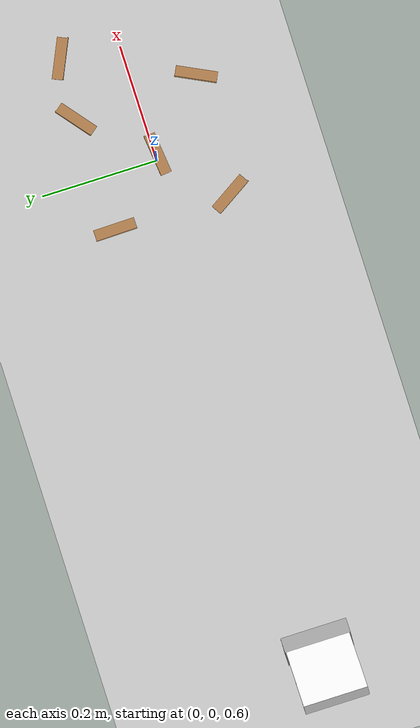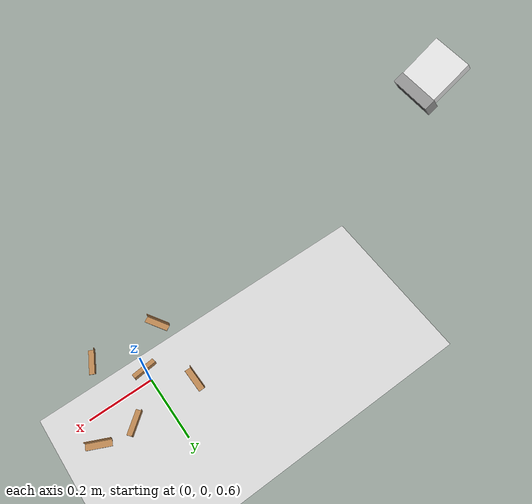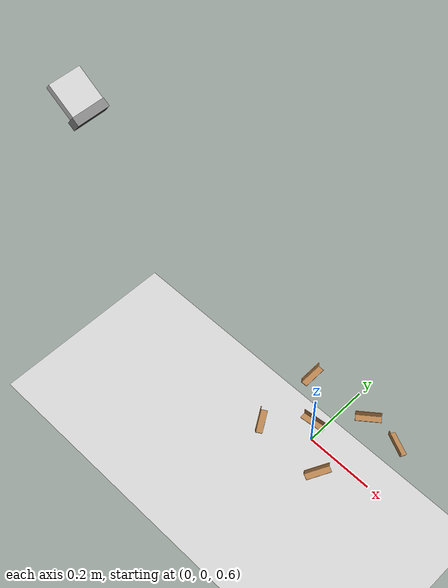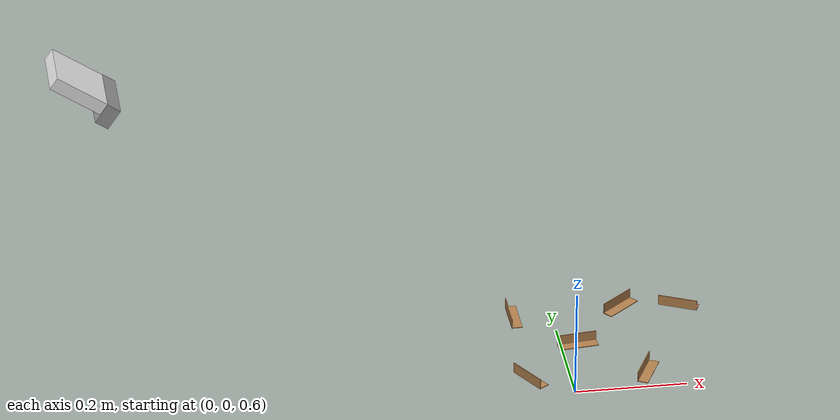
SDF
<sdf version="1.7">
 <world name="default">
  <light name="sun" type="directional">
   <pose>0 0 10 0 -0 0</pose>
   <diffuse>0.8 0.8 0.8 1</diffuse>
   <specular>0.2 0.2 0.2 1</specular>
   <attenuation>
    <range>1000</range>
    <constant>0.9</constant>
    <linear>0.01</linear>
    <quadratic>0.001</quadratic>
   </attenuation>
   <direction>-0.5 0.1 -0.9</direction>
   <spot><inner_angle>0</inner_angle><outer_angle>0</outer_angle><falloff>0</falloff></spot>
  </light>
  <model name="ground_plane">
   <static>1</static>
   <link name="link">
    <collision name="collision">
     <geometry><plane><normal>0 0 1</normal><size>100 100</size></plane></geometry>
     <surface>
      <contact><collide_bitmask>65535</collide_bitmask></contact>
      <friction><ode><mu>100</mu><mu2>50</mu2></ode></friction>
     </surface>
    </collision>
    <visual name="visual">
     <cast_shadows>0</cast_shadows>
     <geometry><plane><normal>0 0 1</normal><size>100 100</size></plane></geometry>
     <material>
      <script><uri>file://media/materials/scripts/gazebo.material</uri><name>Gazebo/Grey</name></script>
     </material>
    </visual>
   </link>
  </model>
  <model name="alu_1">
   <link name="Alu">
    <inertial>
     <mass>0.010376</mass>
     <inertia>
      <ixx>7.2733e-07</ixx>
      <ixy>1.0603e-21</ixy>
      <ixz>-9.5556e-22</ixz>
      <iyy>4.6006e-06</iyy>
      <iyz>2.1645e-07</iyz>
      <izz>4.6006e-06</izz>
     </inertia>
     <pose>-0 -0.005317 0.005317 0 -0 0</pose>
    </inertial>
    <visual name="Alu_visual">
     <pose>0 0 -0 1.5708 -0 0</pose>
     <geometry>
      <mesh>
       <uri>/home/oongking/RobotArm_ws/src/models/RightAngleAlu/stl_files/rightangle.STL</uri>
       <scale>1 1 1</scale>
      </mesh>
     </geometry>
     <material>
      <lighting>1</lighting>
      <script><uri>file://media/materials/scripts/gazebo.material</uri><name>Gazebo/Wood</name></script>
      <shader type="pixel"><normal_map>__default__</normal_map></shader>
      <ambient>0.3 0.3 0.3 1</ambient>
      <diffuse>0.7 0.7 0.7 1</diffuse>
      <specular>0.01 0.01 0.01 1</specular>
      <emissive>0 0 0 1</emissive>
     </material>
    </visual>
    <collision name="LinearInspectAlignedBar_collision">
     <pose>0 0 -0 1.5708 -0 0</pose>
     <geometry>
      <mesh>
       <uri>/home/oongking/RobotArm_ws/src/models/RightAngleAlu/stl_files/rightangle.STL</uri>
       <scale>1 1 1</scale>
      </mesh>
     </geometry>
     <surface>
      <friction>
       <ode><mu>1000</mu><mu2>1000</mu2><fdir1>0 0 0</fdir1><slip1>0</slip1><slip2>0</slip2></ode>
       <torsional>
        <coefficient>1</coefficient>
        <patch_radius>0</patch_radius>
        <surface_radius>0</surface_radius>
        <use_patch_radius>1</use_patch_radius>
        <ode><slip>0</slip></ode>
       </torsional>
      </friction>
      <bounce><restitution_coefficient>0</restitution_coefficient><threshold>1e+06</threshold></bounce>
      <contact>
       <collide_without_contact>0</collide_without_contact>
       <collide_without_contact_bitmask>1</collide_without_contact_bitmask>
       <collide_bitmask>1</collide_bitmask>
       <ode>
        <soft_cfm>0</soft_cfm>
        <soft_erp>0.2</soft_erp>
        <kp>1e+13</kp>
        <kd>1</kd>
        <max_vel>0.01</max_vel>
        <min_depth>0</min_depth>
       </ode>
       <bullet>
        <split_impulse>1</split_impulse>
        <split_impulse_penetration_threshold>-0.01</split_impulse_penetration_threshold>
        <soft_cfm>0</soft_cfm>
        <soft_erp>0.2</soft_erp>
        <kp>1e+13</kp>
        <kd>1</kd>
       </bullet>
      </contact>
     </surface>
    </collision>
   </link>
   <static>0</static>
   <pose>0.001525 0.00629 0.699999 -4.3e-05 6e-06 0.10713</pose>
   <gazebo reference="Alu"><material>Gazebo/Wood</material></gazebo>
  </model>
  <model name="alu_2">
   <link name="Alu">
    <inertial>
     <mass>0.010376</mass>
     <inertia>
      <ixx>7.2733e-07</ixx>
      <ixy>1.0603e-21</ixy>
      <ixz>-9.5556e-22</ixz>
      <iyy>4.6006e-06</iyy>
      <iyz>2.1645e-07</iyz>
      <izz>4.6006e-06</izz>
     </inertia>
     <pose>-0 -0.005317 0.005317 0 -0 0</pose>
    </inertial>
    <visual name="Alu_visual">
     <pose>0 0 -0 1.5708 -0 0</pose>
     <geometry>
      <mesh>
       <uri>/home/oongking/RobotArm_ws/src/models/RightAngleAlu/stl_files/rightangle.STL</uri>
       <scale>1 1 1</scale>
      </mesh>
     </geometry>
     <material>
      <lighting>1</lighting>
      <script><uri>file://media/materials/scripts/gazebo.material</uri><name>Gazebo/Wood</name></script>
      <shader type="pixel"><normal_map>__default__</normal_map></shader>
      <ambient>0.3 0.3 0.3 1</ambient>
      <diffuse>0.7 0.7 0.7 1</diffuse>
      <specular>0.01 0.01 0.01 1</specular>
      <emissive>0 0 0 1</emissive>
     </material>
    </visual>
    <collision name="LinearInspectAlignedBar_collision">
     <pose>0 0 -0 1.5708 -0 0</pose>
     <geometry>
      <mesh>
       <uri>/home/oongking/RobotArm_ws/src/models/RightAngleAlu/stl_files/rightangle.STL</uri>
       <scale>1 1 1</scale>
      </mesh>
     </geometry>
     <surface>
      <friction>
       <ode><mu>1000</mu><mu2>1000</mu2><fdir1>0 0 0</fdir1><slip1>0</slip1><slip2>0</slip2></ode>
       <torsional>
        <coefficient>1</coefficient>
        <patch_radius>0</patch_radius>
        <surface_radius>0</surface_radius>
        <use_patch_radius>1</use_patch_radius>
        <ode><slip>0</slip></ode>
       </torsional>
      </friction>
      <bounce><restitution_coefficient>0</restitution_coefficient><threshold>1e+06</threshold></bounce>
      <contact>
       <collide_without_contact>0</collide_without_contact>
       <collide_without_contact_bitmask>1</collide_without_contact_bitmask>
       <collide_bitmask>1</collide_bitmask>
       <ode>
        <soft_cfm>0</soft_cfm>
        <soft_erp>0.2</soft_erp>
        <kp>1e+13</kp>
        <kd>1</kd>
        <max_vel>0.01</max_vel>
        <min_depth>0</min_depth>
       </ode>
       <bullet>
        <split_impulse>1</split_impulse>
        <split_impulse_penetration_threshold>-0.01</split_impulse_penetration_threshold>
        <soft_cfm>0</soft_cfm>
        <soft_erp>0.2</soft_erp>
        <kp>1e+13</kp>
        <kd>1</kd>
       </bullet>
      </contact>
     </surface>
    </collision>
   </link>
   <static>0</static>
   <pose>0.091751 0.114752 0.699994 -3.3e-05 3.5e-05 0.676177</pose>
   <gazebo reference="Alu"><material>Gazebo/Wood</material></gazebo>
  </model>
  <model name="alu_3">
   <link name="Alu">
    <inertial>
     <mass>0.010376</mass>
     <inertia>
      <ixx>7.2733e-07</ixx>
      <ixy>1.0603e-21</ixy>
      <ixz>-9.5556e-22</ixz>
      <iyy>4.6006e-06</iyy>
      <iyz>2.1645e-07</iyz>
      <izz>4.6006e-06</izz>
     </inertia>
     <pose>-0 -0.005317 0.005317 0 -0 0</pose>
    </inertial>
    <visual name="Alu_visual">
     <pose>0 0 -0 1.5708 -0 0</pose>
     <geometry>
      <mesh>
       <uri>/home/oongking/RobotArm_ws/src/models/RightAngleAlu/stl_files/rightangle.STL</uri>
       <scale>1 1 1</scale>
      </mesh>
     </geometry>
     <material>
      <lighting>1</lighting>
      <script><uri>file://media/materials/scripts/gazebo.material</uri><name>Gazebo/Wood</name></script>
      <shader type="pixel"><normal_map>__default__</normal_map></shader>
      <ambient>0.3 0.3 0.3 1</ambient>
      <diffuse>0.7 0.7 0.7 1</diffuse>
      <specular>0.01 0.01 0.01 1</specular>
      <emissive>0 0 0 1</emissive>
     </material>
    </visual>
    <collision name="LinearInspectAlignedBar_collision">
     <pose>0 0 -0 1.5708 -0 0</pose>
     <geometry>
      <mesh>
       <uri>/home/oongking/RobotArm_ws/src/models/RightAngleAlu/stl_files/rightangle.STL</uri>
       <scale>1 1 1</scale>
      </mesh>
     </geometry>
     <surface>
      <friction>
       <ode><mu>1000</mu><mu2>1000</mu2><fdir1>0 0 0</fdir1><slip1>0</slip1><slip2>0</slip2></ode>
       <torsional>
        <coefficient>1</coefficient>
        <patch_radius>0</patch_radius>
        <surface_radius>0</surface_radius>
        <use_patch_radius>1</use_patch_radius>
        <ode><slip>0</slip></ode>
       </torsional>
      </friction>
      <bounce><restitution_coefficient>0</restitution_coefficient><threshold>1e+06</threshold></bounce>
      <contact>
       <collide_without_contact>0</collide_without_contact>
       <collide_without_contact_bitmask>1</collide_without_contact_bitmask>
       <collide_bitmask>1</collide_bitmask>
       <ode>
        <soft_cfm>0</soft_cfm>
        <soft_erp>0.2</soft_erp>
        <kp>1e+13</kp>
        <kd>1</kd>
        <max_vel>0.01</max_vel>
        <min_depth>0</min_depth>
       </ode>
       <bullet>
        <split_impulse>1</split_impulse>
        <split_impulse_penetration_threshold>-0.01</split_impulse_penetration_threshold>
        <soft_cfm>0</soft_cfm>
        <soft_erp>0.2</soft_erp>
        <kp>1e+13</kp>
        <kd>1</kd>
       </bullet>
      </contact>
     </surface>
    </collision>
   </link>
   <static>0</static>
   <pose>0.10028 -0.099329 0.699999 -1.8e-05 0.000182 1.11083</pose>
   <gazebo reference="Alu"><material>Gazebo/Wood</material></gazebo>
  </model>
  <model name="alu_4">
   <link name="Alu">
    <inertial>
     <mass>0.010376</mass>
     <inertia>
      <ixx>7.2733e-07</ixx>
      <ixy>1.0603e-21</ixy>
      <ixz>-9.5556e-22</ixz>
      <iyy>4.6006e-06</iyy>
      <iyz>2.1645e-07</iyz>
      <izz>4.6006e-06</izz>
     </inertia>
     <pose>-0 -0.005317 0.005317 0 -0 0</pose>
    </inertial>
    <visual name="Alu_visual">
     <pose>0 0 -0 1.5708 -0 0</pose>
     <geometry>
      <mesh>
       <uri>/home/oongking/RobotArm_ws/src/models/RightAngleAlu/stl_files/rightangle.STL</uri>
       <scale>1 1 1</scale>
      </mesh>
     </geometry>
     <material>
      <lighting>1</lighting>
      <script><uri>file://media/materials/scripts/gazebo.material</uri><name>Gazebo/Wood</name></script>
      <shader type="pixel"><normal_map>__default__</normal_map></shader>
      <ambient>0.3 0.3 0.3 1</ambient>
      <diffuse>0.7 0.7 0.7 1</diffuse>
      <specular>0.01 0.01 0.01 1</specular>
      <emissive>0 0 0 1</emissive>
     </material>
    </visual>
    <collision name="LinearInspectAlignedBar_collision">
     <pose>0 0 -0 1.5708 -0 0</pose>
     <geometry>
      <mesh>
       <uri>/home/oongking/RobotArm_ws/src/models/RightAngleAlu/stl_files/rightangle.STL</uri>
       <scale>1 1 1</scale>
      </mesh>
     </geometry>
     <surface>
      <friction>
       <ode><mu>1000</mu><mu2>1000</mu2><fdir1>0 0 0</fdir1><slip1>0</slip1><slip2>0</slip2></ode>
       <torsional>
        <coefficient>1</coefficient>
        <patch_radius>0</patch_radius>
        <surface_radius>0</surface_radius>
        <use_patch_radius>1</use_patch_radius>
        <ode><slip>0</slip></ode>
       </torsional>
      </friction>
      <bounce><restitution_coefficient>0</restitution_coefficient><threshold>1e+06</threshold></bounce>
      <contact>
       <collide_without_contact>0</collide_without_contact>
       <collide_without_contact_bitmask>1</collide_without_contact_bitmask>
       <collide_bitmask>1</collide_bitmask>
       <ode>
        <soft_cfm>0</soft_cfm>
        <soft_erp>0.2</soft_erp>
        <kp>1e+13</kp>
        <kd>1</kd>
        <max_vel>0.01</max_vel>
        <min_depth>0</min_depth>
       </ode>
       <bullet>
        <split_impulse>1</split_impulse>
        <split_impulse_penetration_threshold>-0.01</split_impulse_penetration_threshold>
        <soft_cfm>0</soft_cfm>
        <soft_erp>0.2</soft_erp>
        <kp>1e+13</kp>
        <kd>1</kd>
       </bullet>
      </contact>
     </surface>
    </collision>
   </link>
   <static>0</static>
   <pose>-0.104076 0.100751 0.699995 2e-06 4.4e-05 1.58566</pose>
   <gazebo reference="Alu"><material>Gazebo/Wood</material></gazebo>
  </model>
  <model name="alu_5">
   <link name="Alu">
    <inertial>
     <mass>0.010376</mass>
     <inertia>
      <ixx>7.2733e-07</ixx>
      <ixy>1.0603e-21</ixy>
      <ixz>-9.5556e-22</ixz>
      <iyy>4.6006e-06</iyy>
      <iyz>2.1645e-07</iyz>
      <izz>4.6006e-06</izz>
     </inertia>
     <pose>-0 -0.005317 0.005317 0 -0 0</pose>
    </inertial>
    <visual name="Alu_visual">
     <pose>0 0 -0 1.5708 -0 0</pose>
     <geometry>
      <mesh>
       <uri>/home/oongking/RobotArm_ws/src/models/RightAngleAlu/stl_files/rightangle.STL</uri>
       <scale>1 1 1</scale>
      </mesh>
     </geometry>
     <material>
      <lighting>1</lighting>
      <script><uri>file://media/materials/scripts/gazebo.material</uri><name>Gazebo/Wood</name></script>
      <shader type="pixel"><normal_map>__default__</normal_map></shader>
      <ambient>0.3 0.3 0.3 1</ambient>
      <diffuse>0.7 0.7 0.7 1</diffuse>
      <specular>0.01 0.01 0.01 1</specular>
      <emissive>0 0 0 1</emissive>
     </material>
    </visual>
    <collision name="LinearInspectAlignedBar_collision">
     <pose>0 0 -0 1.5708 -0 0</pose>
     <geometry>
      <mesh>
       <uri>/home/oongking/RobotArm_ws/src/models/RightAngleAlu/stl_files/rightangle.STL</uri>
       <scale>1 1 1</scale>
      </mesh>
     </geometry>
     <surface>
      <friction>
       <ode><mu>1000</mu><mu2>1000</mu2><fdir1>0 0 0</fdir1><slip1>0</slip1><slip2>0</slip2></ode>
       <torsional>
        <coefficient>1</coefficient>
        <patch_radius>0</patch_radius>
        <surface_radius>0</surface_radius>
        <use_patch_radius>1</use_patch_radius>
        <ode><slip>0</slip></ode>
       </torsional>
      </friction>
      <bounce><restitution_coefficient>0</restitution_coefficient><threshold>1e+06</threshold></bounce>
      <contact>
       <collide_without_contact>0</collide_without_contact>
       <collide_without_contact_bitmask>1</collide_without_contact_bitmask>
       <collide_bitmask>1</collide_bitmask>
       <ode>
        <soft_cfm>0</soft_cfm>
        <soft_erp>0.2</soft_erp>
        <kp>1e+13</kp>
        <kd>1</kd>
        <max_vel>0.01</max_vel>
        <min_depth>0</min_depth>
       </ode>
       <bullet>
        <split_impulse>1</split_impulse>
        <split_impulse_penetration_threshold>-0.01</split_impulse_penetration_threshold>
        <soft_cfm>0</soft_cfm>
        <soft_erp>0.2</soft_erp>
        <kp>1e+13</kp>
        <kd>1</kd>
       </bullet>
      </contact>
     </surface>
    </collision>
   </link>
   <static>0</static>
   <pose>-0.104319 -0.101877 0.700004 2.4e-05 3.7e-05 2.12579</pose>
   <gazebo reference="Alu"><material>Gazebo/Wood</material></gazebo>
  </model>
  <model name="alu_6">
   <link name="Alu">
    <inertial>
     <mass>0.010376</mass>
     <inertia>
      <ixx>7.2733e-07</ixx>
      <ixy>1.0603e-21</ixy>
      <ixz>-9.5556e-22</ixz>
      <iyy>4.6006e-06</iyy>
      <iyz>2.1645e-07</iyz>
      <izz>4.6006e-06</izz>
     </inertia>
     <pose>-0 -0.005317 0.005317 0 -0 0</pose>
    </inertial>
    <visual name="Alu_visual">
     <pose>0 0 -0 1.5708 -0 0</pose>
     <geometry>
      <mesh>
       <uri>/home/oongking/RobotArm_ws/src/models/RightAngleAlu/stl_files/rightangle.STL</uri>
       <scale>1 1 1</scale>
      </mesh>
     </geometry>
     <material>
      <lighting>1</lighting>
      <script><uri>file://media/materials/scripts/gazebo.material</uri><name>Gazebo/Wood</name></script>
      <shader type="pixel"><normal_map>__default__</normal_map></shader>
      <ambient>0.3 0.3 0.3 1</ambient>
      <diffuse>0.7 0.7 0.7 1</diffuse>
      <specular>0.01 0.01 0.01 1</specular>
      <emissive>0 0 0 1</emissive>
     </material>
    </visual>
    <collision name="LinearInspectAlignedBar_collision">
     <pose>0 0 -0 1.5708 -0 0</pose>
     <geometry>
      <mesh>
       <uri>/home/oongking/RobotArm_ws/src/models/RightAngleAlu/stl_files/rightangle.STL</uri>
       <scale>1 1 1</scale>
      </mesh>
     </geometry>
     <surface>
      <friction>
       <ode><mu>1000</mu><mu2>1000</mu2><fdir1>0 0 0</fdir1><slip1>0</slip1><slip2>0</slip2></ode>
       <torsional>
        <coefficient>1</coefficient>
        <patch_radius>0</patch_radius>
        <surface_radius>0</surface_radius>
        <use_patch_radius>1</use_patch_radius>
        <ode><slip>0</slip></ode>
       </torsional>
      </friction>
      <bounce><restitution_coefficient>0</restitution_coefficient><threshold>1e+06</threshold></bounce>
      <contact>
       <collide_without_contact>0</collide_without_contact>
       <collide_without_contact_bitmask>1</collide_without_contact_bitmask>
       <collide_bitmask>1</collide_bitmask>
       <ode>
        <soft_cfm>0</soft_cfm>
        <soft_erp>0.2</soft_erp>
        <kp>1e+13</kp>
        <kd>1</kd>
        <max_vel>0.01</max_vel>
        <min_depth>0</min_depth>
       </ode>
       <bullet>
        <split_impulse>1</split_impulse>
        <split_impulse_penetration_threshold>-0.01</split_impulse_penetration_threshold>
        <soft_cfm>0</soft_cfm>
        <soft_erp>0.2</soft_erp>
        <kp>1e+13</kp>
        <kd>1</kd>
       </bullet>
      </contact>
     </surface>
    </collision>
   </link>
   <static>0</static>
   <pose>0.197249 0.093307 0.699995 4e-05 1.7e-05 2.71146</pose>
   <gazebo reference="Alu"><material>Gazebo/Wood</material></gazebo>
  </model>
  <gravity>0 0 -9.8</gravity>
  <magnetic_field>6e-06 2.3e-05 -4.2e-05</magnetic_field>
  <atmosphere type="adiabatic"/>
  <physics type="ode">
   <max_step_size>0.001</max_step_size>
   <real_time_factor>1</real_time_factor>
   <real_time_update_rate>1000</real_time_update_rate>
  </physics>
  <scene><ambient>0.4 0.4 0.4 1</ambient><background>0.7 0.7 0.7 1</background><shadows>1</shadows></scene>
  <spherical_coordinates>
   <surface_model>EARTH_WGS84</surface_model>
   <latitude_deg>0</latitude_deg>
   <longitude_deg>0</longitude_deg>
   <elevation>0</elevation>
   <heading_deg>0</heading_deg>
  </spherical_coordinates>
  <model name="azure_cam">
   <joint name="camera_joint" type="fixed">
    <pose relative_to="__model__">0 0 0 0 -0 0</pose>
    <parent>world</parent>
    <child>camera_base_link</child>
   </joint>
   <link name="camera_base_link">
    <pose relative_to="camera_joint">0 0 0 0 -0 0</pose>
    <inertial>
     <pose>-0.025233 0 0.002667 0 -0 0</pose>
     <mass>0.3</mass>
     <inertia>
      <ixx>7.26667e-06</ixx>
      <ixy>0</ixy>
      <ixz>4.03733e-05</ixz>
      <iyy>0.000389299</iyy>
      <iyz>0</iyz>
      <izz>0.000385033</izz>
     </inertia>
    </inertial>
    <collision name="camera_base_link_collision">
     <pose>-0.013 0 0 0 -0 0</pose>
     <geometry><box><size>0.026 0.103 0.039</size></box></geometry>
    </collision>
    <collision name="camera_base_link_fixed_joint_lump__camera_body_collision_1">
     <pose>-0.0757 0 0.008 0 -0 0</pose>
     <geometry><box><size>0.0994 0.0996 0.023</size></box></geometry>
    </collision>
    <collision name="camera_base_link_fixed_joint_lump__camera_visor_collision_2">
     <pose>-0.0128 0 0 0 -0 0</pose>
     <geometry><box><size>0.026 0.101 0.037</size></box></geometry>
    </collision>
    <visual name="camera_base_link_visual">
     <pose>-0.013 0 0 0 -0 0</pose>
     <geometry><box><size>0.026 0.103 0.039</size></box></geometry>
     <material>
      <script><name>Gazebo/Grey</name><uri>file://media/materials/scripts/gazebo.material</uri></script>
     </material>
    </visual>
    <visual name="camera_base_link_fixed_joint_lump__camera_body_visual_1">
     <pose>-0.0757 0 0.008 0 -0 0</pose>
     <geometry><box><size>0.0994 0.0996 0.023</size></box></geometry>
     <material>
      <script><name>Gazebo/White</name><uri>file://media/materials/scripts/gazebo.material</uri></script>
     </material>
    </visual>
    <visual name="camera_base_link_fixed_joint_lump__camera_visor_visual_2">
     <pose>-0.0128 0 0 0 -0 0</pose>
     <geometry><box><size>0.026 0.101 0.037</size></box></geometry>
     <material>
      <script><name>Gazebo/Black</name><uri>file://media/materials/scripts/gazebo.material</uri></script>
     </material>
    </visual>
    <sensor name="rgbd_camera" type="depth">
     <update_rate>30</update_rate>
     <camera>
      <horizontal_fov>1.309</horizontal_fov>
      <image><width>1280</width><height>720</height><format>R8G8B8</format></image>
      <clip><near>0.5</near><far>5.46</far></clip>
      <vertical_fov>1.134464014</vertical_fov>
     </camera>
     <plugin name="rgbd_controller" filename="libgazebo_ros_openni_kinect.so">
      <baseline>0.2</baseline>
      <alwaysOn>1</alwaysOn>
      <updateRate>1.0</updateRate>
      <cameraName>rgbd_ir</cameraName>
      <imageTopicName>/rgbd/color/image_raw</imageTopicName>
      <cameraInfoTopicName>/rgbd/color/camera_info</cameraInfoTopicName>
      <depthImageTopicName>/rgbd/depth/image_raw</depthImageTopicName>
      <depthImageInfoTopicName>/rgbd/depth/camera_info</depthImageInfoTopicName>
      <pointCloudTopicName>/rgbd/depth/points</pointCloudTopicName>
      <frameName>optical_link</frameName>
      <pointCloudCutoff>0.5</pointCloudCutoff>
      <pointCloudCutoffMax>5.46</pointCloudCutoffMax>
      <distortionK1>0.00000001</distortionK1>
      <distortionK2>0.00000001</distortionK2>
      <distortionK3>0.00000001</distortionK3>
      <distortionT1>0.00000001</distortionT1>
      <distortionT2>0.00000001</distortionT2>
      <CxPrime>0</CxPrime>
      <Cx>0</Cx>
      <Cy>0</Cy>
      <focalLength>0</focalLength>
      <hackBaseline>0</hackBaseline>
      <robotNamespace>/</robotNamespace>
     </plugin>
    </sensor>
   </link>
   <pose>-0.8 0 1.25 0 0.6 0</pose>
  </model>
 </world>
</sdf>
